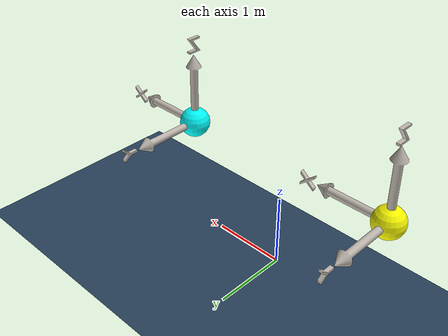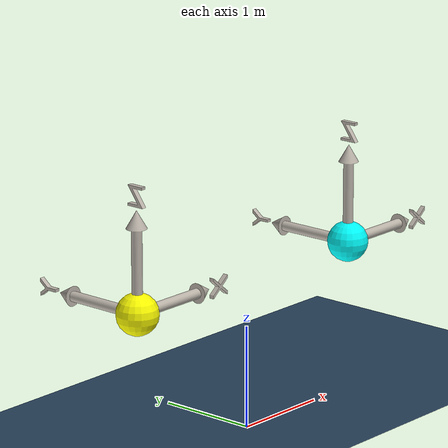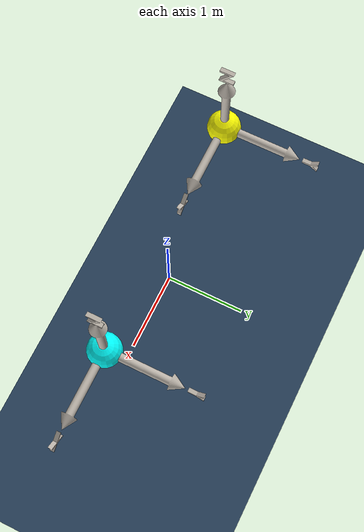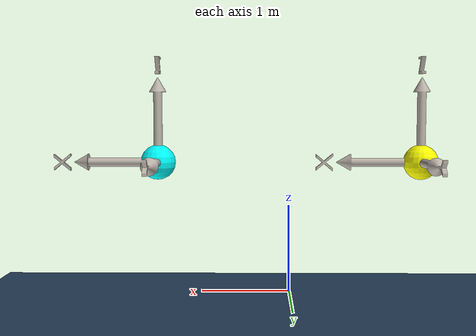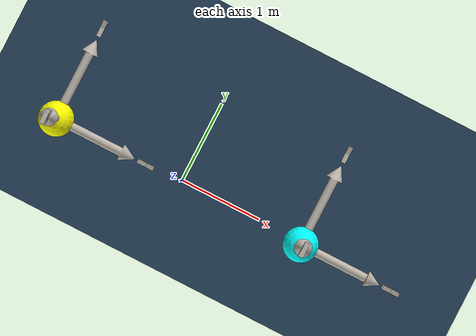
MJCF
<mujoco model="3D Gizmos">
    <option integrator="RK4" timestep="0.001" gravity="0 0 -9.81"/>

    <visual>
        <global offheight="2160" offwidth="3840"/>
        <quality offsamples="8"/>
    </visual>

    <asset>
        <mesh file="../3D Models/3D Gizmo/3D Gizmo.obj"/>
        <texture name="gizmo" type="2d" colorspace="linear"
            file="../3D Models/3D Gizmo/Gizmo.png"/>
        <texture name="grid" type="2d" builtin="checker" rgb1=".1 .2 .3"
            rgb2=".2 .3 .4" width="300" height="300"/>
        <material name="grid" texture="grid" texrepeat="8 8" reflectance=".2"/>
        <material name="gizmo" texture="gizmo"/>
        <material name="master" rgba="1.0 1.0 0.0 1.0"/>
        <material name="slave" rgba="0.0 1.0 1.0 1.0"/>
    </asset>

    <worldbody>
        <geom size="10 10 .01" type="plane" material="grid"/>
        <light pos="0 0 20"/>
        <camera name="closeup" pos="3 -3 3" xyaxes="1 .8 0 0 1 2"/>
        <body name="master" pos="-1.5 0 1.5">
            <joint name="master_center" type="ball" pos="0 0 0"/>
            <site name="IMU" pos="0 0 0"/>
            <geom type="mesh" mesh="3D Gizmo" material="gizmo" euler="90 0 0" mass=".001"/>
            <geom type="sphere" size=".2" material="master" mass="1000"/>
        </body>
        <body name="slave" pos="1.5 0 1.5">
            <joint name="slave_center" type="ball" pos="0 0 0"/>
            <geom type="mesh" mesh="3D Gizmo" material="gizmo" euler="90 0 0" mass=".001"/>
            <geom type="sphere" size=".2" material="slave" mass="1000"/>
        </body>
    </worldbody>

    <sensor>
        <accelerometer name="accelerometer" site="IMU"/>
        <accelerometer name="gyro" site="IMU"/>
        <framezaxis name="top z axis" objtype="body" objname="master"/>
        <frameyaxis name="top y axis" objtype="body" objname="master"/>
    </sensor>

</mujoco>
